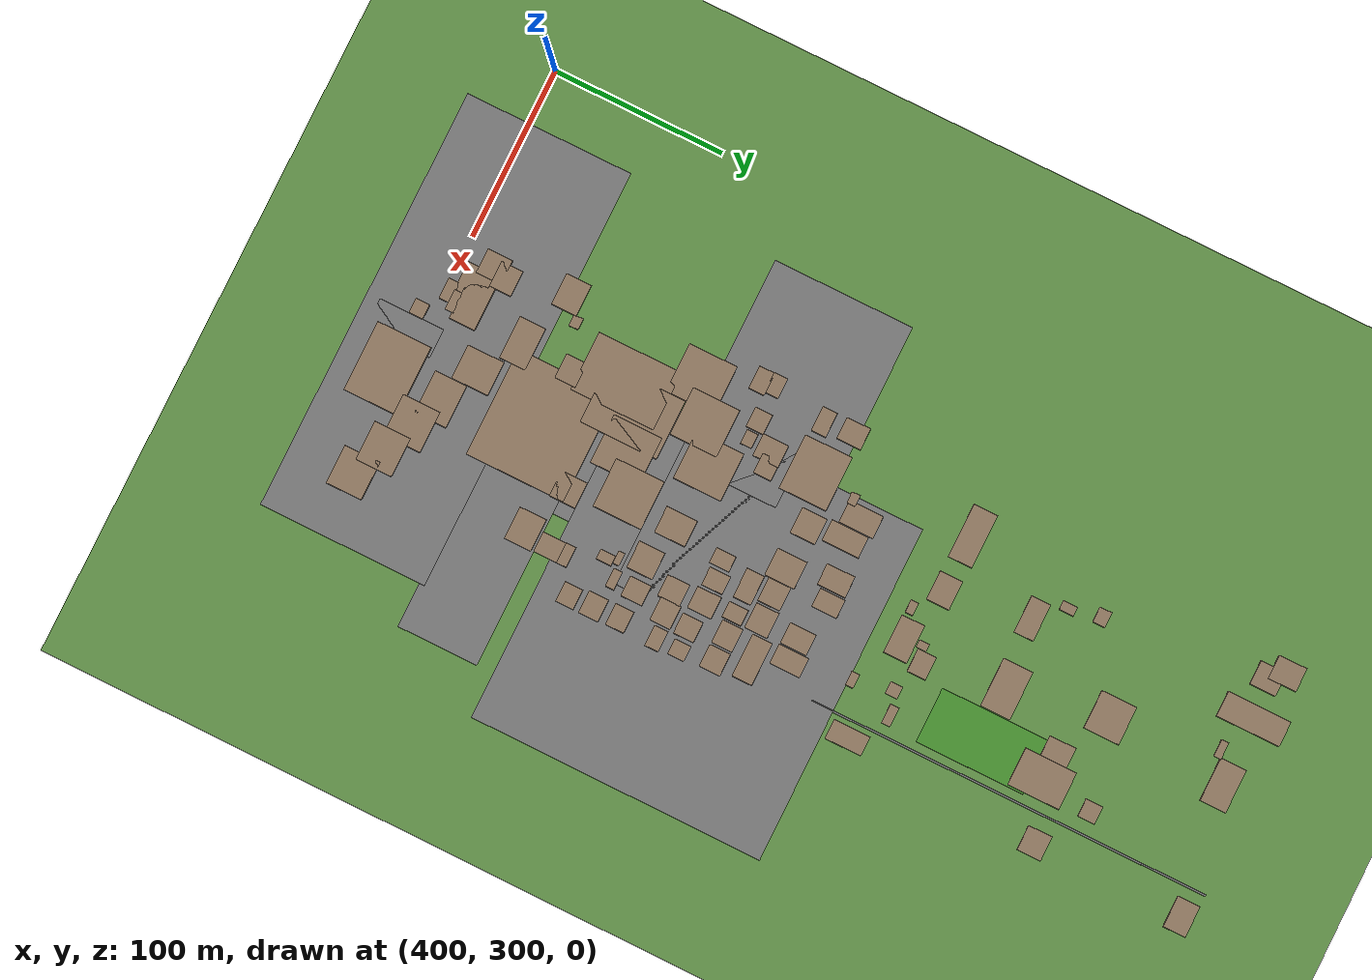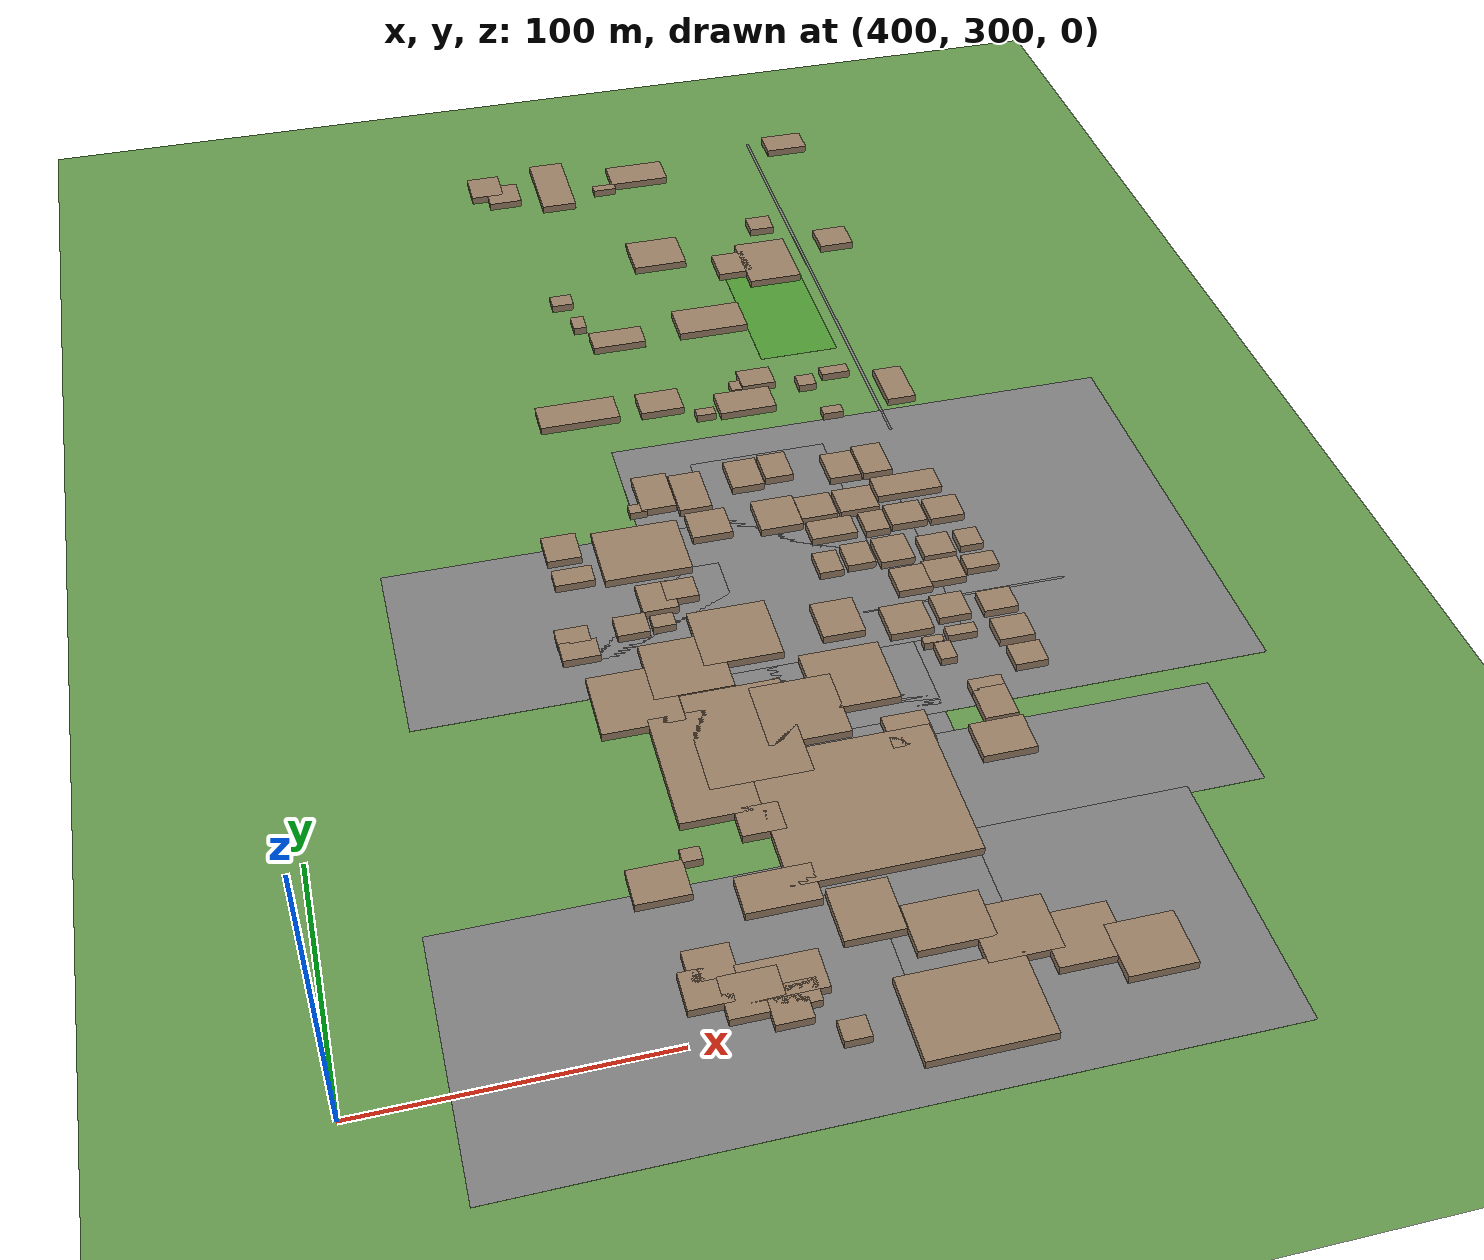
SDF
<sdf version="1.9">
 <world name="kimje_farmland">
  <model name="ground_plane">
   <static>true</static>
   <link name="link">
    <collision name="collision">
     <geometry><plane><normal>0 0 1</normal><size>2000 2000</size></plane></geometry>
    </collision>
    <visual name="visual">
     <geometry><plane><normal>0 0 1</normal><size>2000 2000</size></plane></geometry>
     <material><ambient>0.4 0.6 0.3 1</ambient><diffuse>0.4 0.6 0.3 1</diffuse></material>
    </visual>
   </link>
  </model>
  <model name="osm_16">
   <static>true</static>
   <pose>555.60 311.85 0.040 0 0 0</pose>
   <link name="link">
    <collision name="collision"><geometry><box><size>247.83 98.38 0.080</size></box></geometry></collision>
    <visual name="visual">
     <geometry><box><size>247.83 98.38 0.080</size></box></geometry>
     <material><ambient>0.5 0.5 0.5 1</ambient><diffuse>0.5 0.5 0.5 1</diffuse></material>
    </visual>
   </link>
  </model>
  <model name="osm_24">
   <static>true</static>
   <pose>632.85 500.66 0.040 0 0 0</pose>
   <link name="link">
    <collision name="collision"><geometry><box><size>196.78 171.66 0.080</size></box></geometry></collision>
    <visual name="visual">
     <geometry><box><size>196.78 171.66 0.080</size></box></geometry>
     <material><ambient>0.5 0.5 0.5 1</ambient><diffuse>0.5 0.5 0.5 1</diffuse></material>
    </visual>
   </link>
  </model>
  <model name="osm_86">
   <static>true</static>
   <pose>588.24 487.39 0.040 0 0 0</pose>
   <link name="link">
    <collision name="collision"><geometry><box><size>52.77 167.38 0.080</size></box></geometry></collision>
    <visual name="visual">
     <geometry><box><size>52.77 167.38 0.080</size></box></geometry>
     <material><ambient>0.5 0.5 0.5 1</ambient><diffuse>0.5 0.5 0.5 1</diffuse></material>
    </visual>
   </link>
  </model>
  <model name="osm_101">
   <static>true</static>
   <pose>643.38 381.67 0.040 0 0 0</pose>
   <link name="link">
    <collision name="collision"><geometry><box><size>123.81 47.24 0.080</size></box></geometry></collision>
    <visual name="visual">
     <geometry><box><size>123.81 47.24 0.080</size></box></geometry>
     <material><ambient>0.5 0.5 0.5 1</ambient><diffuse>0.5 0.5 0.5 1</diffuse></material>
    </visual>
   </link>
  </model>
  <model name="osm_127">
   <static>true</static>
   <pose>642.89 690.37 0.040 0 0 0</pose>
   <link name="link">
    <collision name="collision"><geometry><box><size>1.12 234.24 0.080</size></box></geometry></collision>
    <visual name="visual">
     <geometry><box><size>1.12 234.24 0.080</size></box></geometry>
     <material><ambient>0.5 0.5 0.5 1</ambient><diffuse>0.5 0.5 0.5 1</diffuse></material>
    </visual>
   </link>
  </model>
  <model name="osm_129">
   <static>true</static>
   <pose>536.43 492.57 0.040 0 0 0</pose>
   <link name="link">
    <collision name="collision"><geometry><box><size>194.18 82.37 0.080</size></box></geometry></collision>
    <visual name="visual">
     <geometry><box><size>194.18 82.37 0.080</size></box></geometry>
     <material><ambient>0.5 0.5 0.5 1</ambient><diffuse>0.5 0.5 0.5 1</diffuse></material>
    </visual>
   </link>
  </model>
  <model name="osm_130">
   <static>true</static>
   <pose>639.78 471.04 0.040 0 0 0</pose>
   <link name="link">
    <collision name="collision"><geometry><box><size>75.17 1.01 0.080</size></box></geometry></collision>
    <visual name="visual">
     <geometry><box><size>75.17 1.01 0.080</size></box></geometry>
     <material><ambient>0.5 0.5 0.5 1</ambient><diffuse>0.5 0.5 0.5 1</diffuse></material>
    </visual>
   </link>
  </model>
  <model name="osm_133">
   <static>true</static>
   <pose>560.43 289.28 0.040 0 0 0</pose>
   <link name="link">
    <collision name="collision"><geometry><box><size>16.93 38.25 0.080</size></box></geometry></collision>
    <visual name="visual">
     <geometry><box><size>16.93 38.25 0.080</size></box></geometry>
     <material><ambient>0.5 0.5 0.5 1</ambient><diffuse>0.5 0.5 0.5 1</diffuse></material>
    </visual>
   </link>
  </model>
  <model name="osm_134">
   <static>true</static>
   <pose>586.83 347.22 0.040 0 0 0</pose>
   <link name="link">
    <collision name="collision"><geometry><box><size>37.46 80.37 0.080</size></box></geometry></collision>
    <visual name="visual">
     <geometry><box><size>37.46 80.37 0.080</size></box></geometry>
     <material><ambient>0.5 0.5 0.5 1</ambient><diffuse>0.5 0.5 0.5 1</diffuse></material>
    </visual>
   </link>
  </model>
  <model name="osm_964">
   <static>true</static>
   <pose>551.40 659.95 1.500 0 0 0</pose>
   <link name="link">
    <collision name="collision"><geometry><box><size>21.56 11.38 3.000</size></box></geometry></collision>
    <visual name="visual">
     <geometry><box><size>21.56 11.38 3.000</size></box></geometry>
     <material><ambient>0.6 0.5 0.4 1</ambient><diffuse>0.6 0.5 0.4 1</diffuse></material>
    </visual>
   </link>
  </model>
  <model name="osm_965">
   <static>true</static>
   <pose>538.01 674.83 1.500 0 0 0</pose>
   <link name="link">
    <collision name="collision"><geometry><box><size>5.29 8.50 3.000</size></box></geometry></collision>
    <visual name="visual">
     <geometry><box><size>5.29 8.50 3.000</size></box></geometry>
     <material><ambient>0.6 0.5 0.4 1</ambient><diffuse>0.6 0.5 0.4 1</diffuse></material>
    </visual>
   </link>
  </model>
  <model name="osm_966">
   <static>true</static>
   <pose>534.21 693.18 1.500 0 0 0</pose>
   <link name="link">
    <collision name="collision"><geometry><box><size>8.89 7.31 3.000</size></box></geometry></collision>
    <visual name="visual">
     <geometry><box><size>8.89 7.31 3.000</size></box></geometry>
     <material><ambient>0.6 0.5 0.4 1</ambient><diffuse>0.6 0.5 0.4 1</diffuse></material>
    </visual>
   </link>
  </model>
  <model name="osm_967">
   <static>true</static>
   <pose>580.47 720.39 1.500 0 0 0</pose>
   <link name="link">
    <collision name="collision"><geometry><box><size>22.22 20.64 3.000</size></box></geometry></collision>
    <visual name="visual">
     <geometry><box><size>22.22 20.64 3.000</size></box></geometry>
     <material><ambient>0.6 0.5 0.4 1</ambient><diffuse>0.6 0.5 0.4 1</diffuse></material>
    </visual>
   </link>
  </model>
  <model name="osm_968">
   <static>true</static>
   <pose>610.32 703.54 1.500 0 0 0</pose>
   <link name="link">
    <collision name="collision"><geometry><box><size>14.21 15.57 3.000</size></box></geometry></collision>
    <visual name="visual">
     <geometry><box><size>14.21 15.57 3.000</size></box></geometry>
     <material><ambient>0.6 0.5 0.4 1</ambient><diffuse>0.6 0.5 0.4 1</diffuse></material>
    </visual>
   </link>
  </model>
  <model name="osm_969">
   <static>true</static>
   <pose>591.20 664.23 1.500 0 0 0</pose>
   <link name="link">
    <collision name="collision"><geometry><box><size>28.34 17.43 3.000</size></box></geometry></collision>
    <visual name="visual">
     <geometry><box><size>28.34 17.43 3.000</size></box></geometry>
     <material><ambient>0.6 0.5 0.4 1</ambient><diffuse>0.6 0.5 0.4 1</diffuse></material>
    </visual>
   </link>
  </model>
  <model name="osm_970">
   <static>true</static>
   <pose>599.50 617.83 1.500 0 0 0</pose>
   <link name="link">
    <collision name="collision"><geometry><box><size>13.50 10.97 3.000</size></box></geometry></collision>
    <visual name="visual">
     <geometry><box><size>13.50 10.97 3.000</size></box></geometry>
     <material><ambient>0.6 0.5 0.4 1</ambient><diffuse>0.6 0.5 0.4 1</diffuse></material>
    </visual>
   </link>
  </model>
  <model name="osm_971">
   <static>true</static>
   <pose>590.26 613.96 1.500 0 0 0</pose>
   <link name="link">
    <collision name="collision"><geometry><box><size>4.35 6.04 3.000</size></box></geometry></collision>
    <visual name="visual">
     <geometry><box><size>4.35 6.04 3.000</size></box></geometry>
     <material><ambient>0.6 0.5 0.4 1</ambient><diffuse>0.6 0.5 0.4 1</diffuse></material>
    </visual>
   </link>
  </model>
  <model name="osm_972">
   <static>true</static>
   <pose>591.53 603.44 1.500 0 0 0</pose>
   <link name="link">
    <collision name="collision"><geometry><box><size>22.33 13.70 3.000</size></box></geometry></collision>
    <visual name="visual">
     <geometry><box><size>22.33 13.70 3.000</size></box></geometry>
     <material><ambient>0.6 0.5 0.4 1</ambient><diffuse>0.6 0.5 0.4 1</diffuse></material>
    </visual>
   </link>
  </model>
  <model name="osm_973">
   <static>true</static>
   <pose>574.68 599.75 1.500 0 0 0</pose>
   <link name="link">
    <collision name="collision"><geometry><box><size>7.58 4.48 3.000</size></box></geometry></collision>
    <visual name="visual">
     <geometry><box><size>7.58 4.48 3.000</size></box></geometry>
     <material><ambient>0.6 0.5 0.4 1</ambient><diffuse>0.6 0.5 0.4 1</diffuse></material>
    </visual>
   </link>
  </model>
  <model name="osm_974">
   <static>true</static>
   <pose>558.65 611.35 1.500 0 0 0</pose>
   <link name="link">
    <collision name="collision"><geometry><box><size>16.98 13.47 3.000</size></box></geometry></collision>
    <visual name="visual">
     <geometry><box><size>16.98 13.47 3.000</size></box></geometry>
     <material><ambient>0.6 0.5 0.4 1</ambient><diffuse>0.6 0.5 0.4 1</diffuse></material>
    </visual>
   </link>
  </model>
  <model name="osm_975">
   <static>true</static>
   <pose>525.90 612.10 1.500 0 0 0</pose>
   <link name="link">
    <collision name="collision"><geometry><box><size>31.31 14.09 3.000</size></box></geometry></collision>
    <visual name="visual">
     <geometry><box><size>31.31 14.09 3.000</size></box></geometry>
     <material><ambient>0.6 0.5 0.4 1</ambient><diffuse>0.6 0.5 0.4 1</diffuse></material>
    </visual>
   </link>
  </model>
  <model name="osm_978">
   <static>true</static>
   <pose>592.34 558.84 1.500 0 0 0</pose>
   <link name="link">
    <collision name="collision"><geometry><box><size>10.84 14.82 3.000</size></box></geometry></collision>
    <visual name="visual">
     <geometry><box><size>10.84 14.82 3.000</size></box></geometry>
     <material><ambient>0.6 0.5 0.4 1</ambient><diffuse>0.6 0.5 0.4 1</diffuse></material>
    </visual>
   </link>
  </model>
  <model name="osm_979">
   <static>true</static>
   <pose>579.65 557.11 1.500 0 0 0</pose>
   <link name="link">
    <collision name="collision"><geometry><box><size>12.41 16.62 3.000</size></box></geometry></collision>
    <visual name="visual">
     <geometry><box><size>12.41 16.62 3.000</size></box></geometry>
     <material><ambient>0.6 0.5 0.4 1</ambient><diffuse>0.6 0.5 0.4 1</diffuse></material>
    </visual>
   </link>
  </model>
  <model name="osm_980">
   <static>true</static>
   <pose>544.21 554.56 1.500 0 0 0</pose>
   <link name="link">
    <collision name="collision"><geometry><box><size>13.18 20.27 3.000</size></box></geometry></collision>
    <visual name="visual">
     <geometry><box><size>13.18 20.27 3.000</size></box></geometry>
     <material><ambient>0.6 0.5 0.4 1</ambient><diffuse>0.6 0.5 0.4 1</diffuse></material>
    </visual>
   </link>
  </model>
  <model name="osm_981">
   <static>true</static>
   <pose>557.47 551.58 1.500 0 0 0</pose>
   <link name="link">
    <collision name="collision"><geometry><box><size>12.26 21.81 3.000</size></box></geometry></collision>
    <visual name="visual">
     <geometry><box><size>12.26 21.81 3.000</size></box></geometry>
     <material><ambient>0.6 0.5 0.4 1</ambient><diffuse>0.6 0.5 0.4 1</diffuse></material>
    </visual>
   </link>
  </model>
  <model name="osm_982">
   <static>true</static>
   <pose>536.37 546.18 1.500 0 0 0</pose>
   <link name="link">
    <collision name="collision"><geometry><box><size>6.55 4.99 3.000</size></box></geometry></collision>
    <visual name="visual">
     <geometry><box><size>6.55 4.99 3.000</size></box></geometry>
     <material><ambient>0.6 0.5 0.4 1</ambient><diffuse>0.6 0.5 0.4 1</diffuse></material>
    </visual>
   </link>
  </model>
  <model name="osm_1013">
   <static>true</static>
   <pose>504.79 530.69 1.500 0 0 0</pose>
   <link name="link">
    <collision name="collision"><geometry><box><size>12.67 14.22 3.000</size></box></geometry></collision>
    <visual name="visual">
     <geometry><box><size>12.67 14.22 3.000</size></box></geometry>
     <material><ambient>0.6 0.5 0.4 1</ambient><diffuse>0.6 0.5 0.4 1</diffuse></material>
    </visual>
   </link>
  </model>
  <model name="osm_1016">
   <static>true</static>
   <pose>506.13 513.78 1.500 0 0 0</pose>
   <link name="link">
    <collision name="collision"><geometry><box><size>14.54 8.67 3.000</size></box></geometry></collision>
    <visual name="visual">
     <geometry><box><size>14.54 8.67 3.000</size></box></geometry>
     <material><ambient>0.6 0.5 0.4 1</ambient><diffuse>0.6 0.5 0.4 1</diffuse></material>
    </visual>
   </link>
  </model>
  <model name="osm_1017">
   <static>true</static>
   <pose>532.69 521.72 1.500 0 0 0</pose>
   <link name="link">
    <collision name="collision"><geometry><box><size>31.96 28.10 3.000</size></box></geometry></collision>
    <visual name="visual">
     <geometry><box><size>31.96 28.10 3.000</size></box></geometry>
     <material><ambient>0.6 0.5 0.4 1</ambient><diffuse>0.6 0.5 0.4 1</diffuse></material>
    </visual>
   </link>
  </model>
  <model name="osm_1018">
   <static>true</static>
   <pose>559.94 530.94 1.500 0 0 0</pose>
   <link name="link">
    <collision name="collision"><geometry><box><size>15.10 14.77 3.000</size></box></geometry></collision>
    <visual name="visual">
     <geometry><box><size>15.10 14.77 3.000</size></box></geometry>
     <material><ambient>0.6 0.5 0.4 1</ambient><diffuse>0.6 0.5 0.4 1</diffuse></material>
    </visual>
   </link>
  </model>
  <model name="osm_1019">
   <static>true</static>
   <pose>541.51 496.99 1.500 0 0 0</pose>
   <link name="link">
    <collision name="collision"><geometry><box><size>11.78 10.49 3.000</size></box></geometry></collision>
    <visual name="visual">
     <geometry><box><size>11.78 10.49 3.000</size></box></geometry>
     <material><ambient>0.6 0.5 0.4 1</ambient><diffuse>0.6 0.5 0.4 1</diffuse></material>
    </visual>
   </link>
  </model>
  <model name="osm_1020">
   <static>true</static>
   <pose>532.77 494.94 1.500 0 0 0</pose>
   <link name="link">
    <collision name="collision"><geometry><box><size>13.00 15.02 3.000</size></box></geometry></collision>
    <visual name="visual">
     <geometry><box><size>13.00 15.02 3.000</size></box></geometry>
     <material><ambient>0.6 0.5 0.4 1</ambient><diffuse>0.6 0.5 0.4 1</diffuse></material>
    </visual>
   </link>
  </model>
  <model name="osm_1021">
   <static>true</static>
   <pose>585.74 530.24 1.500 0 0 0</pose>
   <link name="link">
    <collision name="collision"><geometry><box><size>16.03 17.52 3.000</size></box></geometry></collision>
    <visual name="visual">
     <geometry><box><size>16.03 17.52 3.000</size></box></geometry>
     <material><ambient>0.6 0.5 0.4 1</ambient><diffuse>0.6 0.5 0.4 1</diffuse></material>
    </visual>
   </link>
  </model>
  <model name="osm_1022">
   <static>true</static>
   <pose>600.76 530.71 1.500 0 0 0</pose>
   <link name="link">
    <collision name="collision"><geometry><box><size>13.74 13.14 3.000</size></box></geometry></collision>
    <visual name="visual">
     <geometry><box><size>13.74 13.14 3.000</size></box></geometry>
     <material><ambient>0.6 0.5 0.4 1</ambient><diffuse>0.6 0.5 0.4 1</diffuse></material>
    </visual>
   </link>
  </model>
  <model name="osm_1023">
   <static>true</static>
   <pose>603.13 516.72 1.500 0 0 0</pose>
   <link name="link">
    <collision name="collision"><geometry><box><size>17.22 10.39 3.000</size></box></geometry></collision>
    <visual name="visual">
     <geometry><box><size>17.22 10.39 3.000</size></box></geometry>
     <material><ambient>0.6 0.5 0.4 1</ambient><diffuse>0.6 0.5 0.4 1</diffuse></material>
    </visual>
   </link>
  </model>
  <model name="osm_1024">
   <static>true</static>
   <pose>596.48 497.88 1.500 0 0 0</pose>
   <link name="link">
    <collision name="collision"><geometry><box><size>8.96 11.62 3.000</size></box></geometry></collision>
    <visual name="visual">
     <geometry><box><size>8.96 11.62 3.000</size></box></geometry>
     <material><ambient>0.6 0.5 0.4 1</ambient><diffuse>0.6 0.5 0.4 1</diffuse></material>
    </visual>
   </link>
  </model>
  <model name="osm_1025">
   <static>true</static>
   <pose>608.13 499.63 1.500 0 0 0</pose>
   <link name="link">
    <collision name="collision"><geometry><box><size>10.46 12.27 3.000</size></box></geometry></collision>
    <visual name="visual">
     <geometry><box><size>10.46 12.27 3.000</size></box></geometry>
     <material><ambient>0.6 0.5 0.4 1</ambient><diffuse>0.6 0.5 0.4 1</diffuse></material>
    </visual>
   </link>
  </model>
  <model name="osm_1026">
   <static>true</static>
   <pose>591.66 467.48 1.500 0 0 0</pose>
   <link name="link">
    <collision name="collision"><geometry><box><size>15.38 18.17 3.000</size></box></geometry></collision>
    <visual name="visual">
     <geometry><box><size>15.38 18.17 3.000</size></box></geometry>
     <material><ambient>0.6 0.5 0.4 1</ambient><diffuse>0.6 0.5 0.4 1</diffuse></material>
    </visual>
   </link>
  </model>
  <model name="osm_1027">
   <static>true</static>
   <pose>587.23 437.09 1.500 0 0 0</pose>
   <link name="link">
    <collision name="collision"><geometry><box><size>28.45 28.69 3.000</size></box></geometry></collision>
    <visual name="visual">
     <geometry><box><size>28.45 28.69 3.000</size></box></geometry>
     <material><ambient>0.6 0.5 0.4 1</ambient><diffuse>0.6 0.5 0.4 1</diffuse></material>
    </visual>
   </link>
  </model>
  <model name="osm_1028">
   <static>true</static>
   <pose>566.78 425.47 1.500 0 0 0</pose>
   <link name="link">
    <collision name="collision"><geometry><box><size>28.56 28.82 3.000</size></box></geometry></collision>
    <visual name="visual">
     <geometry><box><size>28.56 28.82 3.000</size></box></geometry>
     <material><ambient>0.6 0.5 0.4 1</ambient><diffuse>0.6 0.5 0.4 1</diffuse></material>
    </visual>
   </link>
  </model>
  <model name="osm_1029">
   <static>true</static>
   <pose>554.79 468.81 1.500 0 0 0</pose>
   <link name="link">
    <collision name="collision"><geometry><box><size>28.20 28.21 3.000</size></box></geometry></collision>
    <visual name="visual">
     <geometry><box><size>28.20 28.21 3.000</size></box></geometry>
     <material><ambient>0.6 0.5 0.4 1</ambient><diffuse>0.6 0.5 0.4 1</diffuse></material>
    </visual>
   </link>
  </model>
  <model name="osm_1030">
   <static>true</static>
   <pose>520.98 482.34 1.500 0 0 0</pose>
   <link name="link">
    <collision name="collision"><geometry><box><size>11.62 10.16 3.000</size></box></geometry></collision>
    <visual name="visual">
     <geometry><box><size>11.62 10.16 3.000</size></box></geometry>
     <material><ambient>0.6 0.5 0.4 1</ambient><diffuse>0.6 0.5 0.4 1</diffuse></material>
    </visual>
   </link>
  </model>
  <model name="osm_1031">
   <static>true</static>
   <pose>532.16 481.76 1.500 0 0 0</pose>
   <link name="link">
    <collision name="collision"><geometry><box><size>8.16 6.61 3.000</size></box></geometry></collision>
    <visual name="visual">
     <geometry><box><size>8.16 6.61 3.000</size></box></geometry>
     <material><ambient>0.6 0.5 0.4 1</ambient><diffuse>0.6 0.5 0.4 1</diffuse></material>
    </visual>
   </link>
  </model>
  <model name="osm_1032">
   <static>true</static>
   <pose>500.03 481.95 1.500 0 0 0</pose>
   <link name="link">
    <collision name="collision"><geometry><box><size>11.74 8.12 3.000</size></box></geometry></collision>
    <visual name="visual">
     <geometry><box><size>11.74 8.12 3.000</size></box></geometry>
     <material><ambient>0.6 0.5 0.4 1</ambient><diffuse>0.6 0.5 0.4 1</diffuse></material>
    </visual>
   </link>
  </model>
  <model name="osm_1033">
   <static>true</static>
   <pose>501.03 473.98 1.500 0 0 0</pose>
   <link name="link">
    <collision name="collision"><geometry><box><size>13.31 9.22 3.000</size></box></geometry></collision>
    <visual name="visual">
     <geometry><box><size>13.31 9.22 3.000</size></box></geometry>
     <material><ambient>0.6 0.5 0.4 1</ambient><diffuse>0.6 0.5 0.4 1</diffuse></material>
    </visual>
   </link>
  </model>
  <model name="osm_1034">
   <static>true</static>
   <pose>534.66 456.49 1.500 0 0 0</pose>
   <link name="link">
    <collision name="collision"><geometry><box><size>28.02 27.91 3.000</size></box></geometry></collision>
    <visual name="visual">
     <geometry><box><size>28.02 27.91 3.000</size></box></geometry>
     <material><ambient>0.6 0.5 0.4 1</ambient><diffuse>0.6 0.5 0.4 1</diffuse></material>
    </visual>
   </link>
  </model>
  <model name="osm_1035">
   <static>true</static>
   <pose>514.61 444.64 1.500 0 0 0</pose>
   <link name="link">
    <collision name="collision"><geometry><box><size>28.67 28.46 3.000</size></box></geometry></collision>
    <visual name="visual">
     <geometry><box><size>28.67 28.46 3.000</size></box></geometry>
     <material><ambient>0.6 0.5 0.4 1</ambient><diffuse>0.6 0.5 0.4 1</diffuse></material>
    </visual>
   </link>
  </model>
  <model name="osm_1068">
   <static>true</static>
   <pose>546.55 419.30 1.500 0 0 0</pose>
   <link name="link">
    <collision name="collision"><geometry><box><size>34.90 45.61 3.000</size></box></geometry></collision>
    <visual name="visual">
     <geometry><box><size>34.90 45.61 3.000</size></box></geometry>
     <material><ambient>0.6 0.5 0.4 1</ambient><diffuse>0.6 0.5 0.4 1</diffuse></material>
    </visual>
   </link>
  </model>
  <model name="osm_1069">
   <static>true</static>
   <pose>533.50 408.83 1.500 0 0 0</pose>
   <link name="link">
    <collision name="collision"><geometry><box><size>34.39 49.29 3.000</size></box></geometry></collision>
    <visual name="visual">
     <geometry><box><size>34.39 49.29 3.000</size></box></geometry>
     <material><ambient>0.6 0.5 0.4 1</ambient><diffuse>0.6 0.5 0.4 1</diffuse></material>
    </visual>
   </link>
  </model>
  <model name="osm_1070">
   <static>true</static>
   <pose>599.30 407.10 1.500 0 0 0</pose>
   <link name="link">
    <collision name="collision"><geometry><box><size>15.17 15.14 3.000</size></box></geometry></collision>
    <visual name="visual">
     <geometry><box><size>15.17 15.14 3.000</size></box></geometry>
     <material><ambient>0.6 0.5 0.4 1</ambient><diffuse>0.6 0.5 0.4 1</diffuse></material>
    </visual>
   </link>
  </model>
  <model name="osm_1071">
   <static>true</static>
   <pose>575.04 378.56 1.500 0 0 0</pose>
   <link name="link">
    <collision name="collision"><geometry><box><size>62.96 58.12 3.000</size></box></geometry></collision>
    <visual name="visual">
     <geometry><box><size>62.96 58.12 3.000</size></box></geometry>
     <material><ambient>0.6 0.5 0.4 1</ambient><diffuse>0.6 0.5 0.4 1</diffuse></material>
    </visual>
   </link>
  </model>
  <model name="osm_1072">
   <static>true</static>
   <pose>586.30 324.09 1.500 0 0 0</pose>
   <link name="link">
    <collision name="collision"><geometry><box><size>25.11 18.82 3.000</size></box></geometry></collision>
    <visual name="visual">
     <geometry><box><size>25.11 18.82 3.000</size></box></geometry>
     <material><ambient>0.6 0.5 0.4 1</ambient><diffuse>0.6 0.5 0.4 1</diffuse></material>
    </visual>
   </link>
  </model>
  <model name="osm_1073">
   <static>true</static>
   <pose>604.80 316.08 1.500 0 0 0</pose>
   <link name="link">
    <collision name="collision"><geometry><box><size>24.20 21.95 3.000</size></box></geometry></collision>
    <visual name="visual">
     <geometry><box><size>24.20 21.95 3.000</size></box></geometry>
     <material><ambient>0.6 0.5 0.4 1</ambient><diffuse>0.6 0.5 0.4 1</diffuse></material>
    </visual>
   </link>
  </model>
  <model name="osm_1074">
   <static>true</static>
   <pose>563.50 334.98 1.500 0 0 0</pose>
   <link name="link">
    <collision name="collision"><geometry><box><size>19.92 21.64 3.000</size></box></geometry></collision>
    <visual name="visual">
     <geometry><box><size>19.92 21.64 3.000</size></box></geometry>
     <material><ambient>0.6 0.5 0.4 1</ambient><diffuse>0.6 0.5 0.4 1</diffuse></material>
    </visual>
   </link>
  </model>
  <model name="osm_1075">
   <static>true</static>
   <pose>539.83 350.00 1.500 0 0 0</pose>
   <link name="link">
    <collision name="collision"><geometry><box><size>24.82 15.38 3.000</size></box></geometry></collision>
    <visual name="visual">
     <geometry><box><size>24.82 15.38 3.000</size></box></geometry>
     <material><ambient>0.6 0.5 0.4 1</ambient><diffuse>0.6 0.5 0.4 1</diffuse></material>
    </visual>
   </link>
  </model>
  <model name="osm_1076">
   <static>true</static>
   <pose>512.66 326.59 1.500 0 0 0</pose>
   <link name="link">
    <collision name="collision"><geometry><box><size>14.84 12.70 3.000</size></box></geometry></collision>
    <visual name="visual">
     <geometry><box><size>14.84 12.70 3.000</size></box></geometry>
     <material><ambient>0.6 0.5 0.4 1</ambient><diffuse>0.6 0.5 0.4 1</diffuse></material>
    </visual>
   </link>
  </model>
  <model name="osm_1077">
   <static>true</static>
   <pose>509.58 317.90 1.500 0 0 0</pose>
   <link name="link">
    <collision name="collision"><geometry><box><size>14.40 14.77 3.000</size></box></geometry></collision>
    <visual name="visual">
     <geometry><box><size>14.40 14.77 3.000</size></box></geometry>
     <material><ambient>0.6 0.5 0.4 1</ambient><diffuse>0.6 0.5 0.4 1</diffuse></material>
    </visual>
   </link>
  </model>
  <model name="osm_1078">
   <static>true</static>
   <pose>522.51 312.46 1.500 0 0 0</pose>
   <link name="link">
    <collision name="collision"><geometry><box><size>18.45 16.58 3.000</size></box></geometry></collision>
    <visual name="visual">
     <geometry><box><size>18.45 16.58 3.000</size></box></geometry>
     <material><ambient>0.6 0.5 0.4 1</ambient><diffuse>0.6 0.5 0.4 1</diffuse></material>
    </visual>
   </link>
  </model>
  <model name="osm_1079">
   <static>true</static>
   <pose>531.79 303.84 1.500 0 0 0</pose>
   <link name="link">
    <collision name="collision"><geometry><box><size>12.06 10.11 3.000</size></box></geometry></collision>
    <visual name="visual">
     <geometry><box><size>12.06 10.11 3.000</size></box></geometry>
     <material><ambient>0.6 0.5 0.4 1</ambient><diffuse>0.6 0.5 0.4 1</diffuse></material>
    </visual>
   </link>
  </model>
  <model name="osm_1080">
   <static>true</static>
   <pose>535.92 308.86 1.500 0 0 0</pose>
   <link name="link">
    <collision name="collision"><geometry><box><size>11.73 9.01 3.000</size></box></geometry></collision>
    <visual name="visual">
     <geometry><box><size>11.73 9.01 3.000</size></box></geometry>
     <material><ambient>0.6 0.5 0.4 1</ambient><diffuse>0.6 0.5 0.4 1</diffuse></material>
    </visual>
   </link>
  </model>
  <model name="osm_1081">
   <static>true</static>
   <pose>532.27 316.20 1.500 0 0 0</pose>
   <link name="link">
    <collision name="collision"><geometry><box><size>25.96 15.17 3.000</size></box></geometry></collision>
    <visual name="visual">
     <geometry><box><size>25.96 15.17 3.000</size></box></geometry>
     <material><ambient>0.6 0.5 0.4 1</ambient><diffuse>0.6 0.5 0.4 1</diffuse></material>
    </visual>
   </link>
  </model>
  <model name="osm_1082">
   <static>true</static>
   <pose>547.73 292.00 1.500 0 0 0</pose>
   <link name="link">
    <collision name="collision"><geometry><box><size>8.68 8.02 3.000</size></box></geometry></collision>
    <visual name="visual">
     <geometry><box><size>8.68 8.02 3.000</size></box></geometry>
     <material><ambient>0.6 0.5 0.4 1</ambient><diffuse>0.6 0.5 0.4 1</diffuse></material>
    </visual>
   </link>
  </model>
  <model name="osm_1084">
   <static>true</static>
   <pose>541.56 379.91 1.500 0 0 0</pose>
   <link name="link">
    <collision name="collision"><geometry><box><size>14.53 12.27 3.000</size></box></geometry></collision>
    <visual name="visual">
     <geometry><box><size>14.53 12.27 3.000</size></box></geometry>
     <material><ambient>0.6 0.5 0.4 1</ambient><diffuse>0.6 0.5 0.4 1</diffuse></material>
    </visual>
   </link>
  </model>
  <model name="osm_1085">
   <static>true</static>
   <pose>517.01 370.64 1.500 0 0 0</pose>
   <link name="link">
    <collision name="collision"><geometry><box><size>6.51 5.60 3.000</size></box></geometry></collision>
    <visual name="visual">
     <geometry><box><size>6.51 5.60 3.000</size></box></geometry>
     <material><ambient>0.6 0.5 0.4 1</ambient><diffuse>0.6 0.5 0.4 1</diffuse></material>
    </visual>
   </link>
  </model>
  <model name="osm_1087">
   <static>true</static>
   <pose>504.83 361.82 1.500 0 0 0</pose>
   <link name="link">
    <collision name="collision"><geometry><box><size>18.29 14.87 3.000</size></box></geometry></collision>
    <visual name="visual">
     <geometry><box><size>18.29 14.87 3.000</size></box></geometry>
     <material><ambient>0.6 0.5 0.4 1</ambient><diffuse>0.6 0.5 0.4 1</diffuse></material>
    </visual>
   </link>
  </model>
  <model name="osm_1150">
   <static>true</static>
   <pose>584.11 291.14 1.500 0 0 0</pose>
   <link name="link">
    <collision name="collision"><geometry><box><size>40.87 31.97 3.000</size></box></geometry></collision>
    <visual name="visual">
     <geometry><box><size>40.87 31.97 3.000</size></box></geometry>
     <material><ambient>0.6 0.5 0.4 1</ambient><diffuse>0.6 0.5 0.4 1</diffuse></material>
    </visual>
   </link>
  </model>
  <model name="osm_1152">
   <static>true</static>
   <pose>532.87 490.64 0.040 0 0 0</pose>
   <link name="link">
    <collision name="collision"><geometry><box><size>52.05 40.49 0.080</size></box></geometry></collision>
    <visual name="visual">
     <geometry><box><size>52.05 40.49 0.080</size></box></geometry>
     <material><ambient>0.5 0.5 0.5 1</ambient><diffuse>0.5 0.5 0.5 1</diffuse></material>
    </visual>
   </link>
  </model>
  <model name="osm_1376">
   <static>true</static>
   <pose>625.70 702.11 1.500 0 0 0</pose>
   <link name="link">
    <collision name="collision"><geometry><box><size>21.79 30.27 3.000</size></box></geometry></collision>
    <visual name="visual">
     <geometry><box><size>21.79 30.27 3.000</size></box></geometry>
     <material><ambient>0.6 0.5 0.4 1</ambient><diffuse>0.6 0.5 0.4 1</diffuse></material>
    </visual>
   </link>
  </model>
  <model name="osm_1377">
   <static>true</static>
   <pose>629.95 732.71 1.500 0 0 0</pose>
   <link name="link">
    <collision name="collision"><geometry><box><size>10.38 9.96 3.000</size></box></geometry></collision>
    <visual name="visual">
     <geometry><box><size>10.38 9.96 3.000</size></box></geometry>
     <material><ambient>0.6 0.5 0.4 1</ambient><diffuse>0.6 0.5 0.4 1</diffuse></material>
    </visual>
   </link>
  </model>
  <model name="osm_1378">
   <static>true</static>
   <pose>658.22 713.53 1.500 0 0 0</pose>
   <link name="link">
    <collision name="collision"><geometry><box><size>14.30 13.93 3.000</size></box></geometry></collision>
    <visual name="visual">
     <geometry><box><size>14.30 13.93 3.000</size></box></geometry>
     <material><ambient>0.6 0.5 0.4 1</ambient><diffuse>0.6 0.5 0.4 1</diffuse></material>
    </visual>
   </link>
  </model>
  <model name="osm_1392">
   <static>true</static>
   <pose>652.08 599.58 1.500 0 0 0</pose>
   <link name="link">
    <collision name="collision"><geometry><box><size>11.32 21.26 3.000</size></box></geometry></collision>
    <visual name="visual">
     <geometry><box><size>11.32 21.26 3.000</size></box></geometry>
     <material><ambient>0.6 0.5 0.4 1</ambient><diffuse>0.6 0.5 0.4 1</diffuse></material>
    </visual>
   </link>
  </model>
  <model name="osm_1401">
   <static>true</static>
   <pose>646.46 517.86 1.500 0 0 0</pose>
   <link name="link">
    <collision name="collision"><geometry><box><size>13.06 12.36 3.000</size></box></geometry></collision>
    <visual name="visual">
     <geometry><box><size>13.06 12.36 3.000</size></box></geometry>
     <material><ambient>0.6 0.5 0.4 1</ambient><diffuse>0.6 0.5 0.4 1</diffuse></material>
    </visual>
   </link>
  </model>
  <model name="osm_1402">
   <static>true</static>
   <pose>637.38 535.64 1.500 0 0 0</pose>
   <link name="link">
    <collision name="collision"><geometry><box><size>25.05 11.83 3.000</size></box></geometry></collision>
    <visual name="visual">
     <geometry><box><size>25.05 11.83 3.000</size></box></geometry>
     <material><ambient>0.6 0.5 0.4 1</ambient><diffuse>0.6 0.5 0.4 1</diffuse></material>
    </visual>
   </link>
  </model>
  <model name="osm_1403">
   <static>true</static>
   <pose>631.84 518.08 1.500 0 0 0</pose>
   <link name="link">
    <collision name="collision"><geometry><box><size>13.67 12.22 3.000</size></box></geometry></collision>
    <visual name="visual">
     <geometry><box><size>13.67 12.22 3.000</size></box></geometry>
     <material><ambient>0.6 0.5 0.4 1</ambient><diffuse>0.6 0.5 0.4 1</diffuse></material>
    </visual>
   </link>
  </model>
  <model name="osm_1404">
   <static>true</static>
   <pose>619.34 516.56 1.500 0 0 0</pose>
   <link name="link">
    <collision name="collision"><geometry><box><size>9.32 11.48 3.000</size></box></geometry></collision>
    <visual name="visual">
     <geometry><box><size>9.32 11.48 3.000</size></box></geometry>
     <material><ambient>0.6 0.5 0.4 1</ambient><diffuse>0.6 0.5 0.4 1</diffuse></material>
    </visual>
   </link>
  </model>
  <model name="osm_1405">
   <static>true</static>
   <pose>616.33 530.99 1.500 0 0 0</pose>
   <link name="link">
    <collision name="collision"><geometry><box><size>14.86 13.44 3.000</size></box></geometry></collision>
    <visual name="visual">
     <geometry><box><size>14.86 13.44 3.000</size></box></geometry>
     <material><ambient>0.6 0.5 0.4 1</ambient><diffuse>0.6 0.5 0.4 1</diffuse></material>
    </visual>
   </link>
  </model>
  <model name="osm_1406">
   <static>true</static>
   <pose>629.15 553.62 1.500 0 0 0</pose>
   <link name="link">
    <collision name="collision"><geometry><box><size>11.38 17.69 3.000</size></box></geometry></collision>
    <visual name="visual">
     <geometry><box><size>11.38 17.69 3.000</size></box></geometry>
     <material><ambient>0.6 0.5 0.4 1</ambient><diffuse>0.6 0.5 0.4 1</diffuse></material>
    </visual>
   </link>
  </model>
  <model name="osm_1407">
   <static>true</static>
   <pose>616.60 552.80 1.500 0 0 0</pose>
   <link name="link">
    <collision name="collision"><geometry><box><size>12.11 15.50 3.000</size></box></geometry></collision>
    <visual name="visual">
     <geometry><box><size>12.11 15.50 3.000</size></box></geometry>
     <material><ambient>0.6 0.5 0.4 1</ambient><diffuse>0.6 0.5 0.4 1</diffuse></material>
    </visual>
   </link>
  </model>
  <model name="osm_1408">
   <static>true</static>
   <pose>623.28 588.34 1.500 0 0 0</pose>
   <link name="link">
    <collision name="collision"><geometry><box><size>8.09 4.74 3.000</size></box></geometry></collision>
    <visual name="visual">
     <geometry><box><size>8.09 4.74 3.000</size></box></geometry>
     <material><ambient>0.6 0.5 0.4 1</ambient><diffuse>0.6 0.5 0.4 1</diffuse></material>
    </visual>
   </link>
  </model>
  <model name="osm_1409">
   <static>true</static>
   <pose>618.41 610.55 1.500 0 0 0</pose>
   <link name="link">
    <collision name="collision"><geometry><box><size>7.12 7.09 3.000</size></box></geometry></collision>
    <visual name="visual">
     <geometry><box><size>7.12 7.09 3.000</size></box></geometry>
     <material><ambient>0.6 0.5 0.4 1</ambient><diffuse>0.6 0.5 0.4 1</diffuse></material>
    </visual>
   </link>
  </model>
  <model name="osm_1410">
   <static>true</static>
   <pose>631.34 614.78 1.500 0 0 0</pose>
   <link name="link">
    <collision name="collision"><geometry><box><size>11.28 5.18 3.000</size></box></geometry></collision>
    <visual name="visual">
     <geometry><box><size>11.28 5.18 3.000</size></box></geometry>
     <material><ambient>0.6 0.5 0.4 1</ambient><diffuse>0.6 0.5 0.4 1</diffuse></material>
    </visual>
   </link>
  </model>
  <model name="osm_1411">
   <static>true</static>
   <pose>621.33 499.22 1.500 0 0 0</pose>
   <link name="link">
    <collision name="collision"><geometry><box><size>12.71 14.23 3.000</size></box></geometry></collision>
    <visual name="visual">
     <geometry><box><size>12.71 14.23 3.000</size></box></geometry>
     <material><ambient>0.6 0.5 0.4 1</ambient><diffuse>0.6 0.5 0.4 1</diffuse></material>
    </visual>
   </link>
  </model>
  <model name="osm_1412">
   <static>true</static>
   <pose>637.26 497.51 1.500 0 0 0</pose>
   <link name="link">
    <collision name="collision"><geometry><box><size>12.02 11.93 3.000</size></box></geometry></collision>
    <visual name="visual">
     <geometry><box><size>12.02 11.93 3.000</size></box></geometry>
     <material><ambient>0.6 0.5 0.4 1</ambient><diffuse>0.6 0.5 0.4 1</diffuse></material>
    </visual>
   </link>
  </model>
  <model name="osm_1413">
   <static>true</static>
   <pose>649.96 498.52 1.500 0 0 0</pose>
   <link name="link">
    <collision name="collision"><geometry><box><size>8.90 9.74 3.000</size></box></geometry></collision>
    <visual name="visual">
     <geometry><box><size>8.90 9.74 3.000</size></box></geometry>
     <material><ambient>0.6 0.5 0.4 1</ambient><diffuse>0.6 0.5 0.4 1</diffuse></material>
    </visual>
   </link>
  </model>
  <model name="osm_1414">
   <static>true</static>
   <pose>622.82 481.62 1.500 0 0 0</pose>
   <link name="link">
    <collision name="collision"><geometry><box><size>12.67 13.06 3.000</size></box></geometry></collision>
    <visual name="visual">
     <geometry><box><size>12.67 13.06 3.000</size></box></geometry>
     <material><ambient>0.6 0.5 0.4 1</ambient><diffuse>0.6 0.5 0.4 1</diffuse></material>
    </visual>
   </link>
  </model>
  <model name="osm_1415">
   <static>true</static>
   <pose>635.64 483.19 1.500 0 0 0</pose>
   <link name="link">
    <collision name="collision"><geometry><box><size>13.53 12.01 3.000</size></box></geometry></collision>
    <visual name="visual">
     <geometry><box><size>13.53 12.01 3.000</size></box></geometry>
     <material><ambient>0.6 0.5 0.4 1</ambient><diffuse>0.6 0.5 0.4 1</diffuse></material>
    </visual>
   </link>
  </model>
  <model name="osm_1416">
   <static>true</static>
   <pose>649.90 484.83 1.500 0 0 0</pose>
   <link name="link">
    <collision name="collision"><geometry><box><size>12.08 8.00 3.000</size></box></geometry></collision>
    <visual name="visual">
     <geometry><box><size>12.08 8.00 3.000</size></box></geometry>
     <material><ambient>0.6 0.5 0.4 1</ambient><diffuse>0.6 0.5 0.4 1</diffuse></material>
    </visual>
   </link>
  </model>
  <model name="osm_1418">
   <static>true</static>
   <pose>614.95 461.12 1.500 0 0 0</pose>
   <link name="link">
    <collision name="collision"><geometry><box><size>15.75 15.26 3.000</size></box></geometry></collision>
    <visual name="visual">
     <geometry><box><size>15.75 15.26 3.000</size></box></geometry>
     <material><ambient>0.6 0.5 0.4 1</ambient><diffuse>0.6 0.5 0.4 1</diffuse></material>
    </visual>
   </link>
  </model>
  <model name="osm_1419">
   <static>true</static>
   <pose>631.89 463.78 1.500 0 0 0</pose>
   <link name="link">
    <collision name="collision"><geometry><box><size>11.86 12.47 3.000</size></box></geometry></collision>
    <visual name="visual">
     <geometry><box><size>11.86 12.47 3.000</size></box></geometry>
     <material><ambient>0.6 0.5 0.4 1</ambient><diffuse>0.6 0.5 0.4 1</diffuse></material>
    </visual>
   </link>
  </model>
  <model name="osm_1420">
   <static>true</static>
   <pose>631.49 450.33 1.500 0 0 0</pose>
   <link name="link">
    <collision name="collision"><geometry><box><size>10.77 4.98 3.000</size></box></geometry></collision>
    <visual name="visual">
     <geometry><box><size>10.77 4.98 3.000</size></box></geometry>
     <material><ambient>0.6 0.5 0.4 1</ambient><diffuse>0.6 0.5 0.4 1</diffuse></material>
    </visual>
   </link>
  </model>
  <model name="osm_1421">
   <static>true</static>
   <pose>648.88 462.50 1.500 0 0 0</pose>
   <link name="link">
    <collision name="collision"><geometry><box><size>12.58 10.91 3.000</size></box></geometry></collision>
    <visual name="visual">
     <geometry><box><size>12.58 10.91 3.000</size></box></geometry>
     <material><ambient>0.6 0.5 0.4 1</ambient><diffuse>0.6 0.5 0.4 1</diffuse></material>
    </visual>
   </link>
  </model>
  <model name="osm_1423">
   <static>true</static>
   <pose>649.32 447.04 1.500 0 0 0</pose>
   <link name="link">
    <collision name="collision"><geometry><box><size>13.06 11.62 3.000</size></box></geometry></collision>
    <visual name="visual">
     <geometry><box><size>13.06 11.62 3.000</size></box></geometry>
     <material><ambient>0.6 0.5 0.4 1</ambient><diffuse>0.6 0.5 0.4 1</diffuse></material>
    </visual>
   </link>
  </model>
  <model name="osm_1424">
   <static>true</static>
   <pose>620.47 447.81 1.500 0 0 0</pose>
   <link name="link">
    <collision name="collision"><geometry><box><size>7.34 3.56 3.000</size></box></geometry></collision>
    <visual name="visual">
     <geometry><box><size>7.34 3.56 3.000</size></box></geometry>
     <material><ambient>0.6 0.5 0.4 1</ambient><diffuse>0.6 0.5 0.4 1</diffuse></material>
    </visual>
   </link>
  </model>
  <model name="osm_1425">
   <static>true</static>
   <pose>623.01 441.33 1.500 0 0 0</pose>
   <link name="link">
    <collision name="collision"><geometry><box><size>5.93 8.84 3.000</size></box></geometry></collision>
    <visual name="visual">
     <geometry><box><size>5.93 8.84 3.000</size></box></geometry>
     <material><ambient>0.6 0.5 0.4 1</ambient><diffuse>0.6 0.5 0.4 1</diffuse></material>
    </visual>
   </link>
  </model>
  <model name="osm_1434">
   <static>true</static>
   <pose>649.91 432.86 1.500 0 0 0</pose>
   <link name="link">
    <collision name="collision"><geometry><box><size>11.79 10.49 3.000</size></box></geometry></collision>
    <visual name="visual">
     <geometry><box><size>11.79 10.49 3.000</size></box></geometry>
     <material><ambient>0.6 0.5 0.4 1</ambient><diffuse>0.6 0.5 0.4 1</diffuse></material>
    </visual>
   </link>
  </model>
  <model name="osm_1435">
   <static>true</static>
   <pose>631.33 421.81 1.500 0 0 0</pose>
   <link name="link">
    <collision name="collision"><geometry><box><size>11.86 5.81 3.000</size></box></geometry></collision>
    <visual name="visual">
     <geometry><box><size>11.86 5.81 3.000</size></box></geometry>
     <material><ambient>0.6 0.5 0.4 1</ambient><diffuse>0.6 0.5 0.4 1</diffuse></material>
    </visual>
   </link>
  </model>
  <model name="osm_1478">
   <static>true</static>
   <pose>628.53 396.03 1.500 0 0 0</pose>
   <link name="link">
    <collision name="collision"><geometry><box><size>18.84 15.77 3.000</size></box></geometry></collision>
    <visual name="visual">
     <geometry><box><size>18.84 15.77 3.000</size></box></geometry>
     <material><ambient>0.6 0.5 0.4 1</ambient><diffuse>0.6 0.5 0.4 1</diffuse></material>
    </visual>
   </link>
  </model>
  <model name="osm_1479">
   <static>true</static>
   <pose>631.37 412.51 1.500 0 0 0</pose>
   <link name="link">
    <collision name="collision"><geometry><box><size>11.78 14.68 3.000</size></box></geometry></collision>
    <visual name="visual">
     <geometry><box><size>11.78 14.68 3.000</size></box></geometry>
     <material><ambient>0.6 0.5 0.4 1</ambient><diffuse>0.6 0.5 0.4 1</diffuse></material>
    </visual>
   </link>
  </model>
  <model name="osm_1481">
   <static>true</static>
   <pose>623.79 308.49 1.500 0 0 0</pose>
   <link name="link">
    <collision name="collision"><geometry><box><size>22.84 21.33 3.000</size></box></geometry></collision>
    <visual name="visual">
     <geometry><box><size>22.84 21.33 3.000</size></box></geometry>
     <material><ambient>0.6 0.5 0.4 1</ambient><diffuse>0.6 0.5 0.4 1</diffuse></material>
    </visual>
   </link>
  </model>
  <model name="osm_1482">
   <static>true</static>
   <pose>642.28 299.84 1.500 0 0 0</pose>
   <link name="link">
    <collision name="collision"><geometry><box><size>22.61 20.97 3.000</size></box></geometry></collision>
    <visual name="visual">
     <geometry><box><size>22.61 20.97 3.000</size></box></geometry>
     <material><ambient>0.6 0.5 0.4 1</ambient><diffuse>0.6 0.5 0.4 1</diffuse></material>
    </visual>
   </link>
  </model>
  <model name="osm_1528">
   <static>true</static>
   <pose>586.19 790.00 1.500 0 0 0</pose>
   <link name="link">
    <collision name="collision"><geometry><box><size>25.33 15.15 3.000</size></box></geometry></collision>
    <visual name="visual">
     <geometry><box><size>25.33 15.15 3.000</size></box></geometry>
     <material><ambient>0.6 0.5 0.4 1</ambient><diffuse>0.6 0.5 0.4 1</diffuse></material>
    </visual>
   </link>
  </model>
  <model name="osm_1529">
   <static>true</static>
   <pose>547.21 789.22 1.500 0 0 0</pose>
   <link name="link">
    <collision name="collision"><geometry><box><size>14.68 37.10 3.000</size></box></geometry></collision>
    <visual name="visual">
     <geometry><box><size>14.68 37.10 3.000</size></box></geometry>
     <material><ambient>0.6 0.5 0.4 1</ambient><diffuse>0.6 0.5 0.4 1</diffuse></material>
    </visual>
   </link>
  </model>
  <model name="osm_1530">
   <static>true</static>
   <pose>517.40 794.82 1.500 0 0 0</pose>
   <link name="link">
    <collision name="collision"><geometry><box><size>13.83 16.43 3.000</size></box></geometry></collision>
    <visual name="visual">
     <geometry><box><size>13.83 16.43 3.000</size></box></geometry>
     <material><ambient>0.6 0.5 0.4 1</ambient><diffuse>0.6 0.5 0.4 1</diffuse></material>
    </visual>
   </link>
  </model>
  <model name="osm_1531">
   <static>true</static>
   <pose>524.37 786.76 1.500 0 0 0</pose>
   <link name="link">
    <collision name="collision"><geometry><box><size>13.89 15.16 3.000</size></box></geometry></collision>
    <visual name="visual">
     <geometry><box><size>13.89 15.16 3.000</size></box></geometry>
     <material><ambient>0.6 0.5 0.4 1</ambient><diffuse>0.6 0.5 0.4 1</diffuse></material>
    </visual>
   </link>
  </model>
  <model name="osm_1532">
   <static>true</static>
   <pose>569.48 780.79 1.500 0 0 0</pose>
   <link name="link">
    <collision name="collision"><geometry><box><size>9.81 4.24 3.000</size></box></geometry></collision>
    <visual name="visual">
     <geometry><box><size>9.81 4.24 3.000</size></box></geometry>
     <material><ambient>0.6 0.5 0.4 1</ambient><diffuse>0.6 0.5 0.4 1</diffuse></material>
    </visual>
   </link>
  </model>
  <model name="osm_1536">
   <static>true</static>
   <pose>621.78 665.15 0.025 0 0 0</pose>
   <link name="link">
    <collision name="collision"><geometry><box><size>31.90 63.69 0.050</size></box></geometry></collision>
    <visual name="visual">
     <geometry><box><size>31.90 63.69 0.050</size></box></geometry>
     <material><ambient>0.3 0.6 0.2 1</ambient><diffuse>0.3 0.6 0.2 1</diffuse></material>
    </visual>
   </link>
  </model>
  <model name="osm_1537">
   <static>true</static>
   <pose>658.58 800.57 1.500 0 0 0</pose>
   <link name="link">
    <collision name="collision"><geometry><box><size>18.19 13.05 3.000</size></box></geometry></collision>
    <visual name="visual">
     <geometry><box><size>18.19 13.05 3.000</size></box></geometry>
     <material><ambient>0.6 0.5 0.4 1</ambient><diffuse>0.6 0.5 0.4 1</diffuse></material>
    </visual>
   </link>
  </model>
 </world>
</sdf>
